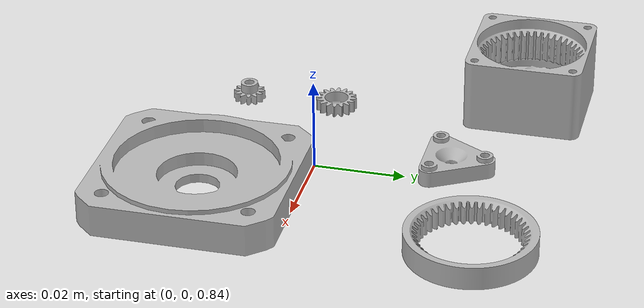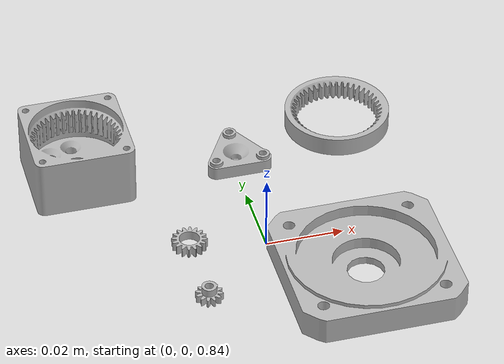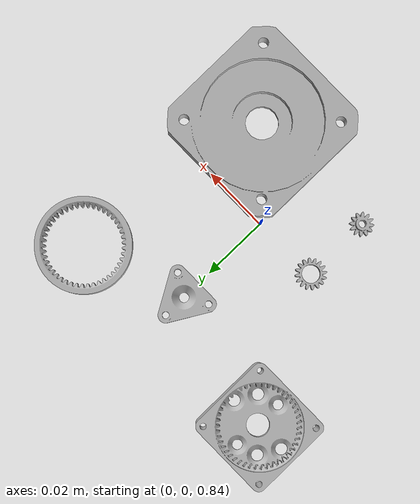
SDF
<sdf version="1.6">
 <world name="default">
  <light name="sun" type="directional">
   <pose>0 0 10 0 -0 0</pose>
   <diffuse>0.8 0.8 0.8 1</diffuse>
   <specular>0.1 0.1 0.1 1</specular>
   <attenuation>
    <range>1000</range>
    <constant>0.9</constant>
    <linear>0.01</linear>
    <quadratic>0.001</quadratic>
   </attenuation>
   <direction>-0.5 0.5 -1</direction>
  </light>
  <model name="ground_plane">
   <static>1</static>
   <link name="link">
    <collision name="collision">
     <geometry><plane><normal>0 0 1</normal><size>100 100</size></plane></geometry>
     <surface><friction><ode><mu>100</mu><mu2>50</mu2></ode></friction></surface>
    </collision>
    <visual name="visual">
     <cast_shadows>0</cast_shadows>
     <geometry><plane><normal>0 0 1</normal><size>100 100</size></plane></geometry>
     <material>
      <script><uri>file://media/materials/scripts/gazebo.material</uri><name>Gazebo/Grey</name></script>
     </material>
    </visual>
   </link>
  </model>
  <gravity>0 0 -9.8</gravity>
  <magnetic_field>6e-06 2.3e-05 -4.2e-05</magnetic_field>
  <atmosphere type="adiabatic"/>
  <physics name="default_physics" default="0" type="ode">
   <max_step_size>0.001</max_step_size>
   <real_time_factor>1</real_time_factor>
   <real_time_update_rate>1000</real_time_update_rate>
  </physics>
  <scene><ambient>0.4 0.4 0.4 1</ambient><background>0.7 0.7 0.7 1</background><shadows>1</shadows></scene>
  <spherical_coordinates>
   <surface_model>EARTH_WGS84</surface_model>
   <latitude_deg>0</latitude_deg>
   <longitude_deg>0</longitude_deg>
   <elevation>0</elevation>
   <heading_deg>0</heading_deg>
  </spherical_coordinates>
  <light name="user_point_light_0" type="point">
   <pose>0 0 2 0 -0 0</pose>
   <diffuse>0.2 0.2 0.2 1</diffuse>
   <specular>0.1 0.1 0.1 1</specular>
   <attenuation>
    <range>20</range>
    <constant>0.5</constant>
    <linear>0.01</linear>
    <quadratic>0.001</quadratic>
   </attenuation>
   <cast_shadows>0</cast_shadows>
   <direction>0 0 -1</direction>
  </light>
  <include>
   <uri>model://Planetary/case</uri>
   <name>case</name>
   <pose>-0.04 0.04 0.845 0 0 0</pose>
   <static>0</static>
  </include>
  <include>
   <uri>model://Planetary/cover</uri>
   <name>cover</name>
   <pose>0.02 -0.02 0.845 0 0 0</pose>
   <static>0</static>
  </include>
  <include>
   <uri>model://Planetary/gear_0</uri>
   <name>gear_0</name>
   <pose>-0.02 -0.02 0.845 0 0 0</pose>
   <static>0</static>
  </include>
  <include>
   <uri>model://Planetary/gear_1</uri>
   <name>gear_1</name>
   <pose>-0.02 0.0 0.845 0 0 0</pose>
   <static>0</static>
  </include>
  <include>
   <uri>model://Planetary/gear_1_g_testing</uri>
   <name>gear_1_g_testing</name>
   <pose>0.03 0.04 0.845 0 0 0</pose>
   <static>0</static>
  </include>
  <include>
   <uri>model://Planetary/gear_carrier</uri>
   <name>gear_carrier</name>
   <pose>0.0 0.03 0.845 0 0 0</pose>
   <static>0</static>
  </include>
 </world>
</sdf>

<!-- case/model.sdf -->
<sdf version="1.5">
  <model name="case">
    <static>false</static>
    <link name="link">
      <collision name="collision">
        <geometry>
          <mesh>
            <scale>1 1 1</scale>
            <uri>model://Planetary/case/case.dae</uri>
          </mesh>
        </geometry>
      </collision>
      <visual name="visual">
        <geometry>
          <mesh>
            <scale>1 1 1</scale>
            <uri>model://Planetary/case/case.dae</uri>
          </mesh>
        </geometry>
      </visual>
    </link>
  </model>
</sdf>

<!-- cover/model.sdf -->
<sdf version="1.5">
  <model name="cover">
    <static>false</static>
    <link name="link">
      <collision name="collision">
        <geometry>
          <mesh>
            <scale>1 1 1</scale>
            <uri>model://Nema/cover/cover.dae</uri>
          </mesh>
        </geometry>
      </collision>
      <visual name="visual">
        <geometry>
          <mesh>
            <scale>1 1 1</scale>
            <uri>model://Nema/cover/cover.dae</uri>
          </mesh>
        </geometry>
      </visual>
    </link>
  </model>
</sdf>

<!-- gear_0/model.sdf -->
<sdf version="1.5">
  <model name="gear_0">
    <static>false</static>
    <link name="link">
      <collision name="collision">
        <geometry>
          <mesh>
            <scale>1 1 1</scale>
            <uri>model://Planetary/gear_0/gear_0.dae</uri>
          </mesh>
        </geometry>
      </collision>
      <visual name="visual">
        <geometry>
          <mesh>
            <scale>1 1 1</scale>
            <uri>model://Planetary/gear_0/gear_0.dae</uri>
          </mesh>
        </geometry>
      </visual>
    </link>
  </model>
</sdf>

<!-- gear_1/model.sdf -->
<sdf version="1.5">
  <model name="gear_1">
    <static>false</static>
    <link name="link">
      <collision name="collision">
        <geometry>
          <mesh>
            <scale>1 1 1</scale>
            <uri>model://Planetary/gear_1/gear_1.dae</uri>
          </mesh>
        </geometry>
      </collision>
      <visual name="visual">
        <geometry>
          <mesh>
            <scale>1 1 1</scale>
            <uri>model://Planetary/gear_1/gear_1.dae</uri>
          </mesh>
        </geometry>
      </visual>
    </link>
  </model>
</sdf>

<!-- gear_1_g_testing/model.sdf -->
<sdf version="1.5">
  <model name="gear_1_g_testing">
    <static>false</static>
    <link name="link">
      <collision name="collision">
        <geometry>
          <mesh>
            <scale>1 1 1</scale>
            <uri>model://Planetary/gear_1_g_testing/gear_1_g_testing.dae</uri>
          </mesh>
        </geometry>
      </collision>
      <visual name="visual">
        <geometry>
          <mesh>
            <scale>1 1 1</scale>
            <uri>model://Planetary/gear_1_g_testing/gear_1_g_testing.dae</uri>
          </mesh>
        </geometry>
      </visual>
    </link>
  </model>
</sdf>

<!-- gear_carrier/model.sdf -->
<sdf version="1.5">
  <model name="gear_carrier">
    <static>false</static>
    <link name="link">
      <collision name="collision">
        <geometry>
          <mesh>
            <scale>1 1 1</scale>
            <uri>model://Planetary/gear_carrier/gear_carrier.dae</uri>
          </mesh>
        </geometry>
      </collision>
      <visual name="visual">
        <geometry>
          <mesh>
            <scale>1 1 1</scale>
            <uri>model://Planetary/gear_carrier/gear_carrier.dae</uri>
          </mesh>
        </geometry>
      </visual>
    </link>
  </model>
</sdf>
